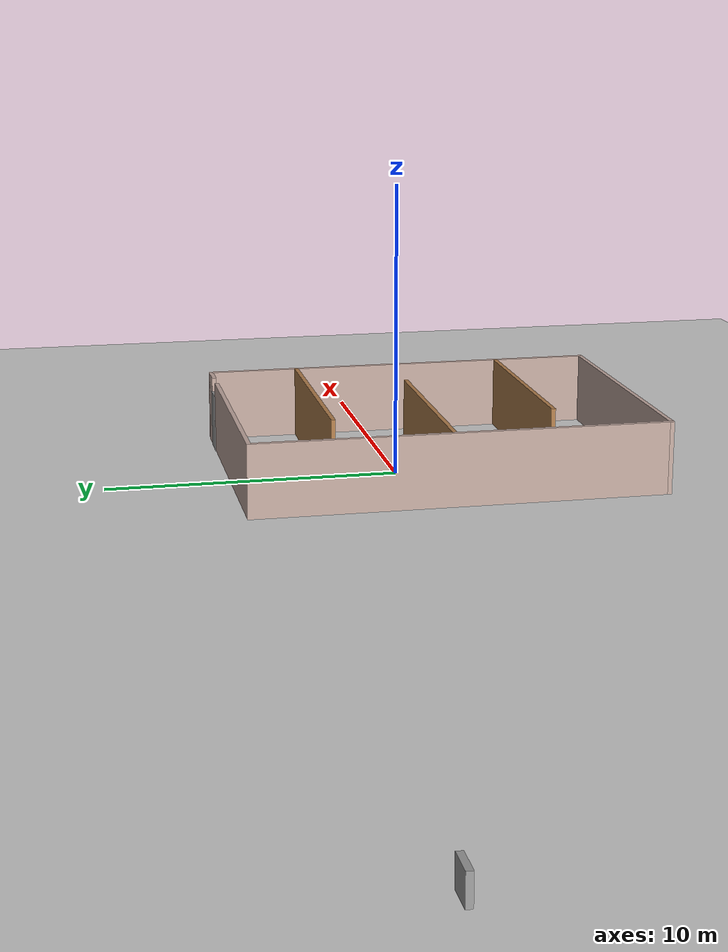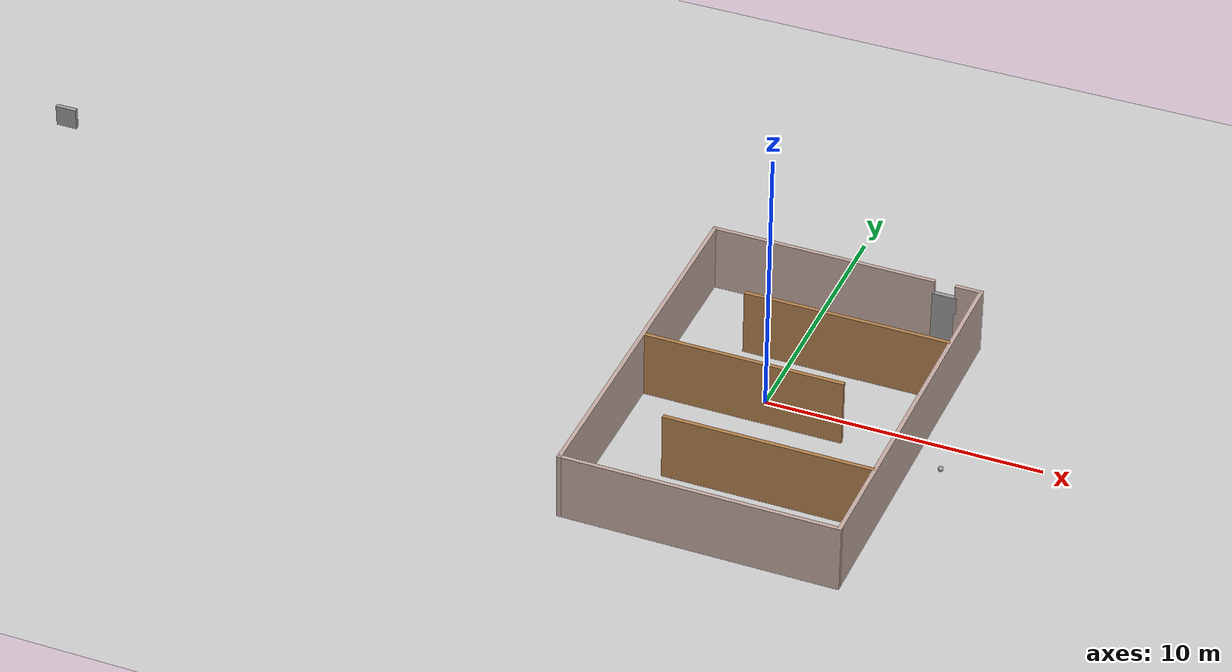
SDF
<sdf version="1.6">
 <world name="default">
  <plugin name="hello_world" filename="libhello_world.so"/>
  <light name="sun" type="directional">
   <pose>0 0 10 0 -0 0</pose>
   <diffuse>0.8 0.8 0.8 1</diffuse>
   <specular>0.2 0.2 0.2 1</specular>
   <attenuation>
    <range>1000</range>
    <constant>0.9</constant>
    <linear>0.01</linear>
    <quadratic>0.001</quadratic>
   </attenuation>
   <direction>-0.5 0.1 -0.9</direction>
  </light>
  <model name="ground_plane">
   <static>1</static>
   <link name="link">
    <collision name="collision">
     <geometry><plane><normal>0 0 1</normal><size>100 100</size></plane></geometry>
     <surface><friction><ode><mu>100</mu><mu2>50</mu2></ode></friction></surface>
    </collision>
    <visual name="visual">
     <cast_shadows>0</cast_shadows>
     <geometry><plane><normal>0 0 1</normal><size>100 100</size></plane></geometry>
     <material>
      <script><uri>file://media/materials/scripts/gazebo.material</uri><name>Gazebo/Grey</name></script>
     </material>
    </visual>
   </link>
  </model>
  <gravity>0 0 -9.8</gravity>
  <magnetic_field>6e-06 2.3e-05 -4.2e-05</magnetic_field>
  <atmosphere type="adiabatic"/>
  <physics name="default_physics" default="0" type="ode">
   <max_step_size>0.001</max_step_size>
   <real_time_factor>1</real_time_factor>
   <real_time_update_rate>1000</real_time_update_rate>
  </physics>
  <scene><ambient>0.4 0.4 0.4 1</ambient><background>0.7 0.7 0.7 1</background><shadows>1</shadows></scene>
  <spherical_coordinates>
   <surface_model>EARTH_WGS84</surface_model>
   <latitude_deg>0</latitude_deg>
   <longitude_deg>0</longitude_deg>
   <elevation>0</elevation>
   <heading_deg>0</heading_deg>
  </spherical_coordinates>
  <model name="robo-house">
   <pose>0.8041 -1.38282 0 0 -0 0</pose>
   <link name="Door_2">
    <collision name="Door_2_Collision">
     <geometry><box><size>0.9 0.17 2</size></box></geometry>
     <pose>0 0 1 0 -0 0</pose>
    </collision>
    <visual name="Door_2_Visual">
     <pose>0 0 1 0 -0 0</pose>
     <geometry><box><size>0.9 0.17 2</size></box></geometry>
     <material>
      <script><uri>file://media/materials/scripts/gazebo.material</uri><name>Gazebo/Grey</name></script>
     </material>
    </visual>
    <pose>3.635 7.06 0 0 -0 0</pose>
   </link>
   <link name="Wall_10">
    <collision name="Wall_10_Collision">
     <geometry><box><size>10 0.15 2.5</size></box></geometry>
     <pose>0 0 1.25 0 -0 0</pose>
    </collision>
    <visual name="Wall_10_Visual">
     <pose>0 0 1.25 0 -0 0</pose>
     <geometry><box><size>10 0.15 2.5</size></box></geometry>
     <material>
      <script><uri>file://media/materials/scripts/gazebo.material</uri><name>Gazebo/Grey</name></script>
      <ambient>0.760784 0.662745 0.627451 1</ambient>
     </material>
     <meta><layer>0</layer></meta>
    </visual>
    <pose>0 -7.05 0 0 -0 3.14159</pose>
   </link>
   <link name="Wall_11">
    <collision name="Wall_11_Collision">
     <geometry><box><size>14.25 0.15 2.5</size></box></geometry>
     <pose>0 0 1.25 0 -0 0</pose>
    </collision>
    <visual name="Wall_11_Visual">
     <pose>0 0 1.25 0 -0 0</pose>
     <geometry><box><size>14.25 0.15 2.5</size></box></geometry>
     <material>
      <script><uri>file://media/materials/scripts/gazebo.material</uri><name>Gazebo/Grey</name></script>
      <ambient>0.760784 0.662745 0.627451 1</ambient>
     </material>
     <meta><layer>0</layer></meta>
    </visual>
    <pose>-4.925 0 0 0 -0 1.5708</pose>
   </link>
   <link name="Wall_12">
    <collision name="Wall_12_Collision">
     <geometry><box><size>8.25 0.15 2.5</size></box></geometry>
     <pose>0 0 1.25 0 -0 0</pose>
    </collision>
    <visual name="Wall_12_Visual">
     <pose>0 0 1.25 0 -0 0</pose>
     <geometry><box><size>8.25 0.15 2.5</size></box></geometry>
     <material>
      <script><uri>file://media/materials/scripts/gazebo.material</uri><name>Gazebo/Grey</name></script>
      <ambient>0.760784 0.662745 0.627451 1</ambient>
     </material>
     <meta><layer>0</layer></meta>
    </visual>
    <pose>-0.875 7.05 0 0 -0 0</pose>
   </link>
   <link name="Wall_15">
    <collision name="Wall_15_Collision">
     <geometry><box><size>7.5 0.15 2.5</size></box></geometry>
     <pose>0 0 1.25 0 -0 0</pose>
    </collision>
    <visual name="Wall_15_Visual">
     <pose>0 0 1.25 0 -0 0</pose>
     <geometry><box><size>7.5 0.15 2.5</size></box></geometry>
     <material>
      <script><uri>file://media/materials/scripts/gazebo.material</uri><name>Gazebo/Wood</name></script>
      <ambient>1 1 1 1</ambient>
     </material>
     <meta><layer>0</layer></meta>
    </visual>
    <pose>1.17028 3.88548 0 0 -0 3.14159</pose>
   </link>
   <link name="Wall_17">
    <collision name="Wall_17_Collision">
     <geometry><box><size>7.25 0.15 2.5</size></box></geometry>
     <pose>0 0 1.25 0 -0 0</pose>
    </collision>
    <visual name="Wall_17_Visual">
     <pose>0 0 1.25 0 -0 0</pose>
     <geometry><box><size>7.25 0.15 2.5</size></box></geometry>
     <material>
      <script><uri>file://media/materials/scripts/gazebo.material</uri><name>Gazebo/Wood</name></script>
      <ambient>1 1 1 1</ambient>
     </material>
     <meta><layer>0</layer></meta>
    </visual>
    <pose>-1.2437 0.307803 0 0 -0 0</pose>
   </link>
   <link name="Wall_19">
    <collision name="Wall_19_Collision">
     <geometry><box><size>7.5 0.15 2.5</size></box></geometry>
     <pose>0 0 1.25 0 -0 0</pose>
    </collision>
    <visual name="Wall_19_Visual">
     <pose>0 0 1.25 0 -0 0</pose>
     <geometry><box><size>7.5 0.15 2.5</size></box></geometry>
     <material>
      <script><uri>file://media/materials/scripts/gazebo.material</uri><name>Gazebo/Wood</name></script>
      <ambient>1 1 1 1</ambient>
     </material>
     <meta><layer>0</layer></meta>
    </visual>
    <pose>1.16287 -3.70444 0 0 -0 3.14159</pose>
   </link>
   <link name="Wall_8">
    <collision name="Wall_8_Collision">
     <geometry><box><size>1 0.15 2.5</size></box></geometry>
     <pose>0 0 1.25 0 -0 0</pose>
    </collision>
    <visual name="Wall_8_Visual">
     <pose>0 0 1.25 0 -0 0</pose>
     <geometry><box><size>1 0.15 2.5</size></box></geometry>
     <material>
      <script><uri>file://media/materials/scripts/gazebo.material</uri><name>Gazebo/Grey</name></script>
      <ambient>0.760784 0.662745 0.627451 1</ambient>
     </material>
     <meta><layer>0</layer></meta>
    </visual>
    <pose>4.5 7.05 0 0 -0 0</pose>
   </link>
   <link name="Wall_9">
    <collision name="Wall_9_Collision">
     <geometry><box><size>14.25 0.15 2.5</size></box></geometry>
     <pose>0 0 1.25 0 -0 0</pose>
    </collision>
    <visual name="Wall_9_Visual">
     <pose>0 0 1.25 0 -0 0</pose>
     <geometry><box><size>14.25 0.15 2.5</size></box></geometry>
     <material>
      <script><uri>file://media/materials/scripts/gazebo.material</uri><name>Gazebo/Grey</name></script>
      <ambient>0.760784 0.662745 0.627451 1</ambient>
     </material>
     <meta><layer>0</layer></meta>
    </visual>
    <pose>4.925 0 0 0 0 -1.5708</pose>
   </link>
   <link name="Window_0">
    <collision name="Window_0_Collision">
     <geometry><box><size>0.8 0.17 0.8</size></box></geometry>
     <pose>0 0 0.4 0 -0 0</pose>
    </collision>
    <visual name="Window_0_Visual">
     <pose>0 0 0.4 0 -0 0</pose>
     <geometry><box><size>0.8 0.17 0.8</size></box></geometry>
     <material>
      <script><uri>file://media/materials/scripts/gazebo.material</uri><name>Gazebo/Grey</name></script>
     </material>
    </visual>
    <pose>-30.2566 6.51133 0.5 0 -0 0</pose>
   </link>
   <static>1</static>
  </model>
  <model name="my_ball">
   <link name="link_0">
    <inertial>
     <mass>1</mass>
     <inertia><ixx>0.1</ixx><ixy>0</ixy><ixz>0</ixz><iyy>0.1</iyy><iyz>0</iyz><izz>0.1</izz></inertia>
    </inertial>
    <visual name="visual">
     <geometry><sphere><radius>0.1</radius></sphere></geometry>
     <material>
      <lighting>1</lighting>
      <script><uri>file://media/materials/scripts/gazebo.material</uri><name>Gazebo/Grey</name></script>
      <shader type="pixel"><normal_map>__default__</normal_map></shader>
      <ambient>1 1 1 1</ambient>
      <diffuse>1 1 1 1</diffuse>
      <specular>1 1 1 1</specular>
      <emissive>1 1 1 1</emissive>
     </material>
    </visual>
    <collision name="collision">
     <geometry><sphere><radius>0.1</radius></sphere></geometry>
     <surface>
      <friction>
       <ode><mu>1</mu><mu2>1</mu2><fdir1>0 0 0</fdir1><slip1>0</slip1><slip2>0</slip2></ode>
       <torsional>
        <coefficient>1</coefficient>
        <patch_radius>0</patch_radius>
        <surface_radius>0</surface_radius>
        <use_patch_radius>1</use_patch_radius>
        <ode><slip>0</slip></ode>
       </torsional>
      </friction>
      <bounce><restitution_coefficient>0</restitution_coefficient><threshold>1e+06</threshold></bounce>
      <contact>
       <collide_without_contact>0</collide_without_contact>
       <collide_without_contact_bitmask>1</collide_without_contact_bitmask>
       <collide_bitmask>1</collide_bitmask>
       <ode>
        <soft_cfm>0</soft_cfm>
        <soft_erp>0.2</soft_erp>
        <kp>1e+13</kp>
        <kd>1</kd>
        <max_vel>0.01</max_vel>
        <min_depth>0</min_depth>
       </ode>
       <bullet>
        <split_impulse>1</split_impulse>
        <split_impulse_penetration_threshold>-0.01</split_impulse_penetration_threshold>
        <soft_cfm>0</soft_cfm>
        <soft_erp>0.2</soft_erp>
        <kp>1e+13</kp>
        <kd>1</kd>
       </bullet>
      </contact>
     </surface>
    </collision>
   </link>
   <static>0</static>
   <pose>6.79893 -1.28379 0.1 0 -0 0</pose>
  </model>
 </world>
</sdf>
